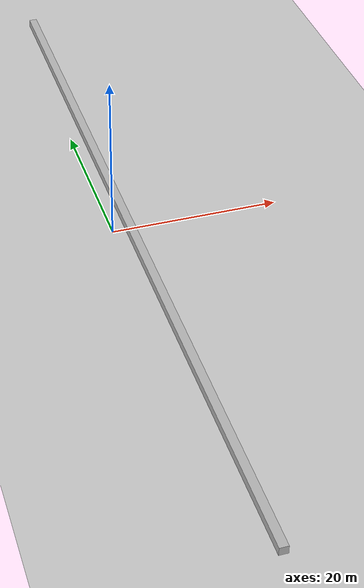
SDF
<?xml version="1.0" ?>
<sdf version="1.4">
    <world name="default">
        <include>
            <uri>model://ground_plane</uri>
        </include>
        -->
        <model name="ground_plane">
            <static>true</static>
            <link name="link">
                <collision name="collision">
                    <geometry>
                        <plane>
                            <normal>0 0 1</normal>
                            <size>100 100</size>
                        </plane>
                    </geometry>
                    <surface>
                        <contact>
                            <ode>
                                <kp>10000000.0</kp>
                                <kd>100.0</kd>
                                <min_depth>0.002</min_depth>
                            </ode>
                        </contact>
                        <friction>
                            <ode>
                                <mu>100</mu>
                                <mu2>50</mu2>
                            </ode>
                        </friction>
                    </surface>
                </collision>
                <visual name="visual">
                    <cast_shadows>false</cast_shadows>
                    <geometry>
                        <plane>
                            <normal>0 0 1</normal>
                            <size>100 100</size>
                        </plane>
                    </geometry>
                    <material>
                        <script>
                            <uri>file://media/materials/scripts/gazebo.material</uri>
                            <name>Gazebo/Grey</name>
                        </script>
                    </material>
                </visual>
            </link>
        </model>
        -->

        <!-- Light source -->
        <include>
            <uri>model://sun</uri>
        </include>

        <model name="box">
            <pose>2.0 0 0.5 0 0 0</pose>
            <static>true</static>
            <link name="link">
                <visual name="visual">
                    <geometry>
                        <box>
                            <size>1 100 1</size>
                        </box>
                    </geometry>
                </visual>
                <collision name="collision">
                    <geometry>
                        <box>
                            <size>1 100 1</size>
                        </box>
                    </geometry>
                </collision>
            </link>
        </model>

        <!-- World camera -->
        <gui fullscreen='0'>
            <camera name='world_camera'>
                <pose>4.927360 -4.376610 3.740080 0.000000 0.275643 2.356190</pose>
                <view_controller>orbit</view_controller>
            </camera>
        </gui>

    </world>
</sdf>
